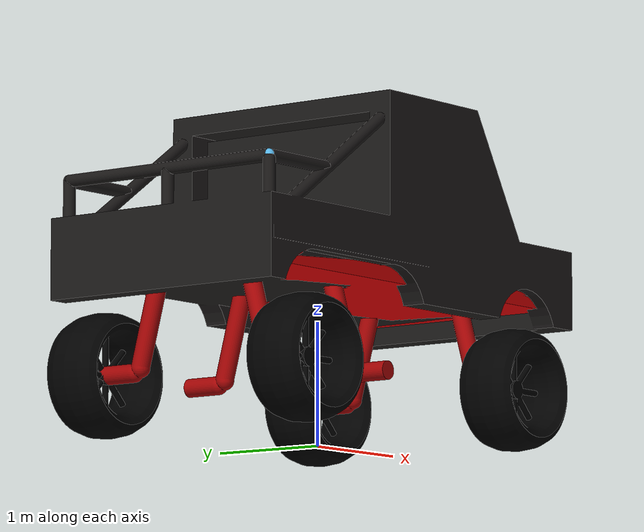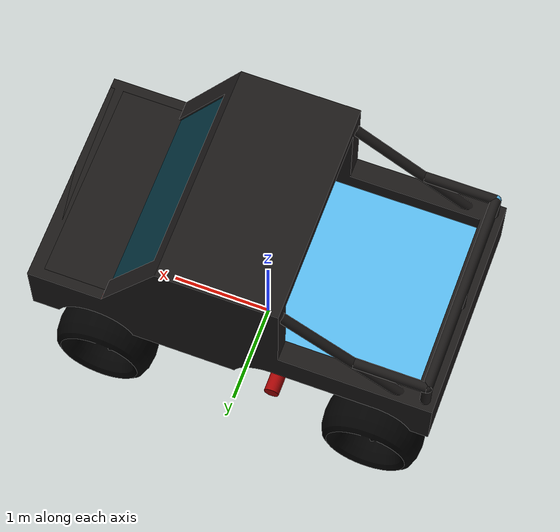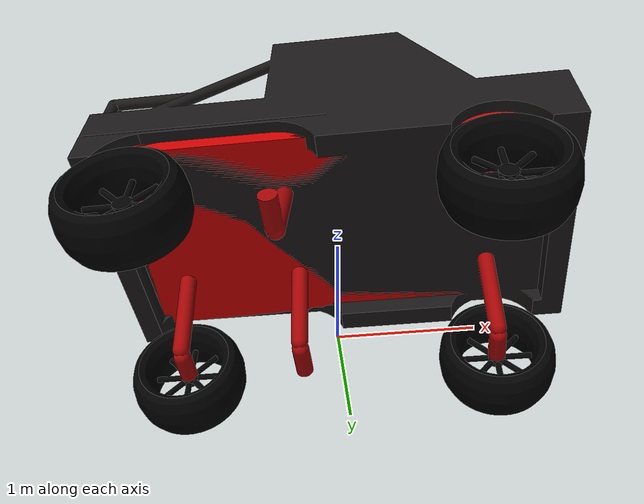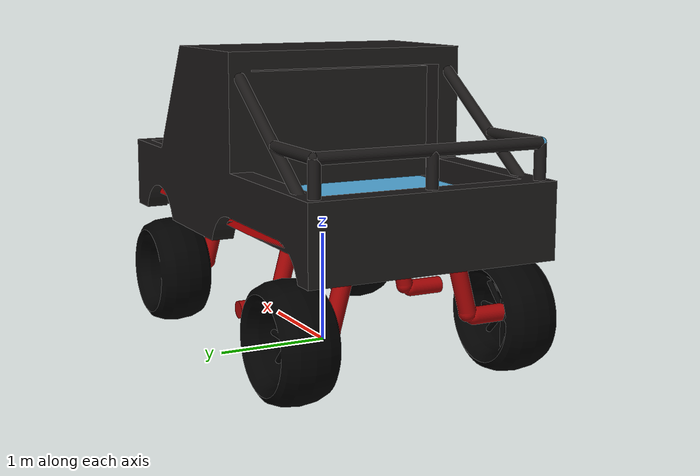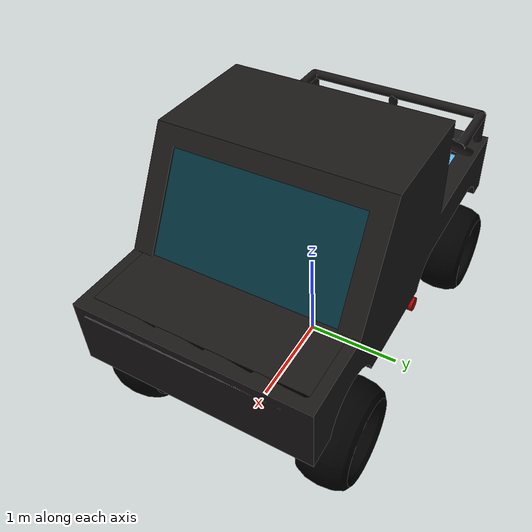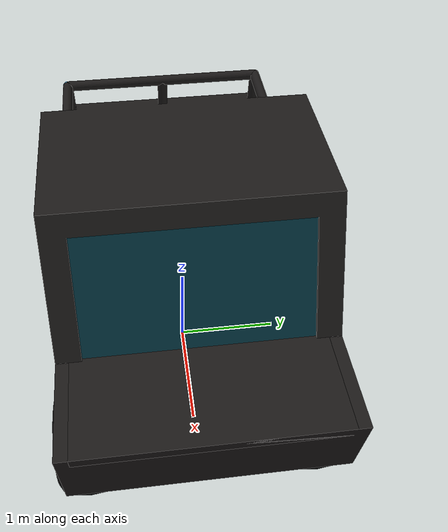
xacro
<?xml version="1.0"?>
<!-- created with Phobos 1.0.1 "Capricious Choutengan" -->
<robot name="GWAGON" xmlns:xacro="http://ros.org/wiki/xacro">

  <xacro:include filename="$(find gwagon_description)/urdf/imu.urdf.xacro"/>
  <xacro:include filename="$(find gwagon_description)/urdf/camera.urdf.xacro"/>

  <xacro:property name="PI" value="3.1415926535897931"/>

  <xacro:arg name="robot_id" default="robot"/>
  <xacro:arg name="prefix" default=""/>
  <xacro:arg name="robot_ns" default=""/>

  <link name="Bajos">
    <inertial>
      <origin xyz="0 0 0" rpy="0 0 0"/>
      <mass value="5"/>
      <inertia ixx="0.001" ixy="0" ixz="0" iyy="0.001" iyz="0" izz="0.001"/>
    </inertial>
    <visual name="Bajos.001">
      <origin xyz="0 0 0" rpy="0 0 0"/>
      <geometry>
        <box size="3.8 2.0 0.2"/>
      </geometry>
      <material name="Material.001"/>
    </visual>
  </link>

  <link name="Capo">
    <inertial>
      <origin xyz="0 0 0" rpy="0 0 0"/>
      <mass value="5"/>
      <inertia ixx="0.001" ixy="0" ixz="0" iyy="0.001" iyz="0" izz="0.001"/>
    </inertial>
    <visual name="Capo.001">
      <origin xyz="0 0 0" rpy="0 0 0"/>
      <geometry>
        <box size="1.0 2.0 0.1"/>
      </geometry>
      <material name="Material"/>
    </visual>
  </link>

  <link name="base_link">
    <inertial>
      <origin xyz="0 0 0" rpy="0 0 0"/>
      <mass value="1"/>
      <inertia ixx="0.001" ixy="0" ixz="0" iyy="0.001" iyz="0" izz="0.001"/>
    </inertial>
    <visual name="base_link.001">
      <origin xyz="0 0 0" rpy="0 0 0"/>
      <geometry>
        <mesh filename="file://$(find gwagon_description)/meshes/dae/Cube.001.dae" scale="2.0 1.1 1.0"/>
      </geometry>
      <material name="Material"/>
    </visual>
  </link>

  <link name="base_footprint">
    <inertial>
      <origin xyz="0 0 0" rpy="0 0 0"/>
      <mass value="1"/>
      <inertia ixx="0.001" ixy="0" ixz="0" iyy="0.001" iyz="0" izz="0.001"/>
    </inertial>
  </link>

  <link name="Cristal">
    <inertial>
      <origin xyz="0 0 0" rpy="0 0 0"/>
      <mass value="5"/>
      <inertia ixx="0.001" ixy="0" ixz="0" iyy="0.001" iyz="0" izz="0.001"/>
    </inertial>
    <visual name="Cristal.001">
      <origin xyz="0 0 0" rpy="0 0 0"/>
      <geometry>
        <box size="1.0 2.0 0"/>
      </geometry>
      <material name="Material.008"/>
    </visual>
  </link>

  <link name="Rueda_dealntera_der_">
    <inertial>
      <origin xyz="0 0 0" rpy="0 0 0"/>
      <mass value="50"/>
      <inertia ixx="0.001" ixy="0" ixz="0" iyy="0.001" iyz="0" izz="0.001"/>
    </inertial>
    <visual name="Rueda_dealntera_der.001">
      <origin xyz="0 0 0" rpy="0 0 0"/>
      <geometry>
        <mesh filename="file://$(find gwagon_description)/meshes/dae/Torus.003.dae" scale="0.4 0.4 1.0"/>
      </geometry>
      <material name="Material.002"/>
    </visual>
    <collision name="Rueda_dealntera_der">
      <origin xyz="0 0 0" rpy="0 0 0"/>
      <geometry>
        <mesh filename="file://$(find gwagon_description)/meshes/dae/Torus.009.dae" scale="1.0 1.0 1.0"/>
      </geometry>
    </collision>
  </link>

  <link name="Rueda_dealntera_iz_">
    <inertial>
      <origin xyz="0 0 0" rpy="0 0 0"/>
      <mass value="50"/>
      <inertia ixx="0.001" ixy="0" ixz="0" iyy="0.001" iyz="0" izz="0.001"/>
    </inertial>
    <visual name="Rueda_dealntera_iz.001">
      <origin xyz="0 0 0" rpy="0 0 0"/>
      <geometry>
        <mesh filename="file://$(find gwagon_description)/meshes/dae/Torus.001.dae" scale="0.4 0.4 1.0"/>
      </geometry>
      <material name="Material.005"/>
    </visual>
    <collision name="Rueda_dealntera_iz">
      <origin xyz="0 0 0" rpy="0 0 0"/>
      <geometry>
        <mesh filename="file://$(find gwagon_description)/meshes/dae/Torus.011.dae" scale="1.0 1.0 1.0"/>
      </geometry>
    </collision>
  </link>

  <link name="Rueda_trasera1_der_">
    <inertial>
      <origin xyz="0 0 0" rpy="0 0 0"/>
      <mass value="50"/>
      <inertia ixx="0.001" ixy="0" ixz="0" iyy="0.001" iyz="0" izz="0.001"/>
    </inertial>
    <visual name="Rueda_trasera1_der.001">
      <origin xyz="0 0 0" rpy="0 0 0"/>
      <geometry>
        <mesh filename="file://$(find gwagon_description)/meshes/dae/Torus.002.dae" scale="0.4 0.4 1.0"/>
      </geometry>
      <material name="Material.003"/>
    </visual>
    <collision name="Rueda_trasera1_der">
      <origin xyz="0 0 0" rpy="0 0 0"/>
      <geometry>
        <mesh filename="file://$(find gwagon_description)/meshes/dae/Torus.010.dae" scale="1.0 1.0 1.0"/>
      </geometry>
    </collision>
  </link>

  <link name="Rueda_trasera1_iz_">
    <inertial>
      <origin xyz="0 0 0" rpy="0 0 0"/>
      <mass value="50"/>
      <inertia ixx="0.001" ixy="0" ixz="0" iyy="0.001" iyz="0" izz="0.001"/>
    </inertial>
    <visual name="Rueda_trasera1_iz.001">
      <origin xyz="0 0 0" rpy="0 0 0"/>
      <geometry>
        <mesh filename="file://$(find gwagon_description)/meshes/dae/Torus.005.dae" scale="0.4 0.4 1.0"/>
      </geometry>
      <material name="Material.002"/>
    </visual>
    <collision name="Rueda_trasera1_iz">
      <origin xyz="0 0 0" rpy="0 0 0"/>
      <geometry>
        <mesh filename="file://$(find gwagon_description)/meshes/dae/Torus.007.dae" scale="1.0 1.0 1.0"/>
      </geometry>
    </collision>
  </link>

  <link name="Invisible">
    <inertial>
      <origin xyz="0 0 0" rpy="0 0 0"/>
      <mass value="0.001"/>
      <inertia ixx="0.001" ixy="0" ixz="0" iyy="0.001" iyz="0" izz="0.001"/>
    </inertial>
    <visual name="Plane">
      <origin xyz="0 0 0" rpy="0 0 0"/>
      <geometry>
        <box size="2.0 2.0 0"/>
      </geometry>
    </visual>
    <collision name="Plane">
      <origin xyz="0 0 0" rpy="0 0 0"/>
      <geometry>
        <box size="2.0 2.0 0"/>
      </geometry>
    </collision>
  </link>

  <link name="Suspension_del_der">
    <inertial>
      <origin xyz="0 0 0" rpy="0 0 0"/>
      <mass value="10"/>
      <inertia ixx="0.001" ixy="0" ixz="0" iyy="0.001" iyz="0" izz="0.001"/>
    </inertial>
    <visual name="Suspension_del_der.001">
      <origin xyz="0 0 0" rpy="0 0 0"/>
      <geometry>
        <mesh filename="file://$(find gwagon_description)/meshes/dae/Cylinder.008.dae" scale="0.075 0.075 0.35"/>
      </geometry>
      <material name="Material.007"/>
    </visual>
  </link>

  <link name="Suspension_del_iz">
    <inertial>
      <origin xyz="0 0 0" rpy="0 0 0"/>
      <mass value="10"/>
      <inertia ixx="0.001" ixy="0" ixz="0" iyy="0.001" iyz="0" izz="0.001"/>
    </inertial>
    <visual name="Suspension_del_iz.001">
      <origin xyz="0 0 0" rpy="0 0 0"/>
      <geometry>
        <mesh filename="file://$(find gwagon_description)/meshes/dae/Cylinder.011.dae" scale="0.075 0.075 0.35"/>
      </geometry>
      <material name="Material.007"/>
    </visual>
  </link>

  <link name="Suspension_tra1_der">
    <inertial>
      <origin xyz="0 0 0" rpy="0 0 0"/>
      <mass value="10"/>
      <inertia ixx="0.001" ixy="0" ixz="0" iyy="0.001" iyz="0" izz="0.001"/>
    </inertial>
    <visual name="Suspension_tra1_der.001">
      <origin xyz="0 0 0" rpy="0 0 0"/>
      <geometry>
        <mesh filename="file://$(find gwagon_description)/meshes/dae/Cylinder.009.dae" scale="0.075 0.075 0.35"/>
      </geometry>
      <material name="Material.007"/>
    </visual>
  </link>

  <link name="Suspension_tras1_iz">
    <inertial>
      <origin xyz="0 0 0" rpy="0 0 0"/>
      <mass value="10"/>
      <inertia ixx="0.001" ixy="0" ixz="0" iyy="0.001" iyz="0" izz="0.001"/>
    </inertial>
    <visual name="Suspension_tras1_iz.001">
      <origin xyz="0 0 0" rpy="0 0 0"/>
      <geometry>
        <mesh filename="file://$(find gwagon_description)/meshes/dae/Cylinder.012.dae" scale="0.075 0.075 0.35"/>
      </geometry>
      <material name="Material.007"/>
    </visual>
  </link>

  <link name="Suspension_tras2_der">
    <inertial>
      <origin xyz="0 0 0" rpy="0 0 0"/>
      <mass value="10"/>
      <inertia ixx="0.001" ixy="0" ixz="0" iyy="0.001" iyz="0" izz="0.001"/>
    </inertial>
    <visual name="Suspension_tras2_der.001">
      <origin xyz="0 0 0" rpy="0 0 0"/>
      <geometry>
        <mesh filename="file://$(find gwagon_description)/meshes/dae/Cylinder.010.dae" scale="0.075 0.075 0.35"/>
      </geometry>
      <material name="Material.007"/>
    </visual>
  </link>

  <link name="Suspension_tras2_iz">
    <inertial>
      <origin xyz="0 0 0" rpy="0 0 0"/>
      <mass value="10"/>
      <inertia ixx="0.001" ixy="0" ixz="0" iyy="0.001" iyz="0" izz="0.001"/>
    </inertial>
    <visual name="Suspension_tras2_iz.001">
      <origin xyz="0 0 0" rpy="0 0 0"/>
      <geometry>
        <mesh filename="file://$(find gwagon_description)/meshes/dae/Cylinder.013.dae" scale="0.075 0.075 0.35"/>
      </geometry>
      <material name="Material.007"/>
    </visual>
  </link>

  <link name="Union_b">
    <inertial>
      <origin xyz="0 0 0" rpy="0 0 0"/>
      <mass value="5"/>
      <inertia ixx="0.001" ixy="0" ixz="0" iyy="0.001" iyz="0" izz="0.001"/>
    </inertial>
    <visual name="Union_b.001">
      <origin xyz="0 0 0" rpy="0 0 0"/>
      <geometry>
        <sphere radius="0.05"/>
      </geometry>
      <material name="Material"/>
    </visual>
  </link>

  <link name="Union_b2">
    <inertial>
      <origin xyz="0 0 0" rpy="0 0 0"/>
      <mass value="5"/>
      <inertia ixx="0.001" ixy="0" ixz="0" iyy="0.001" iyz="0" izz="0.001"/>
    </inertial>
    <visual name="Union_b2.001">
      <origin xyz="0 0 0" rpy="0 0 0"/>
      <geometry>
        <sphere radius="0.05"/>
      </geometry>
    </visual>
  </link>

  <link name="Z1">
    <inertial>
      <origin xyz="0 0 0" rpy="0 0 0"/>
      <mass value="5"/>
      <inertia ixx="0.001" ixy="0" ixz="0" iyy="0.001" iyz="0" izz="0.001"/>
    </inertial>
    <visual name="B1.001">
      <origin xyz="0 0 0" rpy="0 0 0"/>
      <geometry>
        <cylinder radius="0.05" length="2.0"/>
      </geometry>
      <material name="Material"/>
    </visual>
    <collision name="Z1">
      <origin xyz="0 0 0" rpy="0 0 0"/>
      <geometry>
        <cylinder radius="0.05" length="2.0"/>
      </geometry>
    </collision>
  </link>

  <link name="Z2">
    <inertial>
      <origin xyz="0 0 0" rpy="0 0 0"/>
      <mass value="5"/>
      <inertia ixx="0.001" ixy="0" ixz="0" iyy="0.001" iyz="0" izz="0.001"/>
    </inertial>
    <visual name="B2.001">
      <origin xyz="0 0 0" rpy="0 0 0"/>
      <geometry>
        <cylinder radius="0.05" length="0.3"/>
      </geometry>
      <material name="Material"/>
    </visual>
    <collision name="Z2">
      <origin xyz="0 0 0" rpy="0 0 0"/>
      <geometry>
        <cylinder radius="0.05" length="0.3"/>
      </geometry>
    </collision>
  </link>

  <link name="Z3">
    <inertial>
      <origin xyz="0 0 0" rpy="0 0 0"/>
      <mass value="5"/>
      <inertia ixx="0.001" ixy="0" ixz="0" iyy="0.001" iyz="0" izz="0.001"/>
    </inertial>
    <visual name="B3.001">
      <origin xyz="0 0 0" rpy="0 0 0"/>
      <geometry>
        <cylinder radius="0.05" length="0.3"/>
      </geometry>
      <material name="Material"/>
    </visual>
    <collision name="Z3">
      <origin xyz="0 0 0" rpy="0 0 0"/>
      <geometry>
        <cylinder radius="0.05" length="0.3"/>
      </geometry>
    </collision>
  </link>

  <link name="Z4">
    <inertial>
      <origin xyz="0 0 0" rpy="0 0 0"/>
      <mass value="5"/>
      <inertia ixx="0.001" ixy="0" ixz="0" iyy="0.001" iyz="0" izz="0.001"/>
    </inertial>
    <visual name="B4.001">
      <origin xyz="0 0 0" rpy="0 0 0"/>
      <geometry>
        <cylinder radius="0.05" length="0.3"/>
      </geometry>
      <material name="Material"/>
    </visual>
    <collision name="Z4">
      <origin xyz="0 0 0" rpy="0 0 0"/>
      <geometry>
        <cylinder radius="0.05" length="0.3"/>
      </geometry>
    </collision>
  </link>

  <link name="Z5">
    <inertial>
      <origin xyz="0 0 0" rpy="0 0 0"/>
      <mass value="5"/>
      <inertia ixx="0.001" ixy="0" ixz="0" iyy="0.001" iyz="0" izz="0.001"/>
    </inertial>
    <visual name="B5.001">
      <origin xyz="0 0 0" rpy="0 0 0"/>
      <geometry>
        <cylinder radius="0.05" length="0.7"/>
      </geometry>
      <material name="Material"/>
    </visual>
    <collision name="Z2">
      <origin xyz="0 0 0" rpy="0 0 0"/>
      <geometry>
        <cylinder radius="0.05" length="0.7"/>
      </geometry>
    </collision>
  </link>

  <link name="Z6">
    <inertial>
      <origin xyz="0 0 0" rpy="0 0 0"/>
      <mass value="5"/>
      <inertia ixx="0.001" ixy="0" ixz="0" iyy="0.001" iyz="0" izz="0.001"/>
    </inertial>
    <visual name="B6.001">
      <origin xyz="0 0 0" rpy="0 0 0"/>
      <geometry>
        <cylinder radius="0.05" length="0.7"/>
      </geometry>
      <material name="Material"/>
    </visual>
    <collision name="Z2">
      <origin xyz="0 0 0" rpy="0 0 0"/>
      <geometry>
        <cylinder radius="0.05" length="0.7"/>
      </geometry>
    </collision>
  </link>

  <joint name="base_foodprint_" type="fixed">
    <origin xyz="0 0 1.7" rpy="0 0 0"/>
    <parent link="base_footprint"/>
    <child link="base_link"/>
  </joint>

  <joint name="Bajos" type="fixed">
    <origin xyz="0 0 -0.4" rpy="0 0 0"/>
    <parent link="base_link"/>
    <child link="Bajos"/>
  </joint>

  <joint name="Capo" type="fixed">
    <origin xyz="1.5 0 -0.05" rpy="0 0 0"/>
    <parent link="base_link"/>
    <child link="Capo"/>
  </joint>

  <joint name="Cristal" type="fixed">
    <origin xyz="0.99263 0.01257 0.40732" rpy="0 1.0472 0"/>
    <parent link="base_link"/>
    <child link="Cristal"/>
  </joint>

  <joint name="Rueda_dealntera_der" type="continuous">
    <origin xyz="1.3 1.0 -1.2" rpy="1.5708 0 3.1415926"/>
    <parent link="base_link"/>
    <child link="Rueda_dealntera_der_"/>
    <axis xyz="0 0 1.0"/>
    <limit effort="0" velocity="0"/>
  </joint>

  <transmission name="Rueda_dealntera_der_trans">
      <type>transmission_interface/SimpleTransmission</type>
      <joint name="Rueda_dealntera_der" >
          <hardwareInterface>hardware_interface/VelocityJointInterface</hardwareInterface>
      </joint>
      <actuator name="Rueda_dealntera_der_motor">
          <mechanicalReduction>1</mechanicalReduction>
      </actuator>
  </transmission>

  <gazebo reference="Rueda_dealntera_der_">
      <mu1>5</mu1>
      <mu2>5</mu2>
  </gazebo>

  <joint name="Rueda_dealntera_iz" type="continuous">
    <origin xyz="1.3 -1.0 -1.2" rpy="1.5708 0 0"/>
    <parent link="base_link"/>
    <child link="Rueda_dealntera_iz_"/>
    <axis xyz="0 0 1.0"/>
    <limit effort="0" velocity="0"/>
  </joint>

  <transmission name="Rueda_dealntera_iz_trans">
      <type>transmission_interface/SimpleTransmission</type>
      <joint name="Rueda_dealntera_iz" >
          <hardwareInterface>hardware_interface/VelocityJointInterface</hardwareInterface>
      </joint>
      <actuator name="Rueda_dealntera_iz_motor">
          <mechanicalReduction>1</mechanicalReduction>
      </actuator>
  </transmission>

  <gazebo reference="Rueda_dealntera_iz_">
      <mu1>5</mu1>
      <mu2>5</mu2>
  </gazebo>

  <joint name="Rueda_trasera1_der" type="continuous">
    <origin xyz="-1.45 1.0 -1.2" rpy="1.5708 0 3.1415926"/>
    <parent link="base_link"/>
    <child link="Rueda_trasera1_der_"/>
    <axis xyz="0 0 1.0"/>
    <limit effort="0" velocity="0"/>
  </joint>

  <transmission name="Rueda_trasera1_der_trans">
      <type>transmission_interface/SimpleTransmission</type>
      <joint name="Rueda_trasera1_der" >
          <hardwareInterface>hardware_interface/VelocityJointInterface</hardwareInterface>
      </joint>
      <actuator name="Rueda_trasera1_der_motor">
          <mechanicalReduction>1</mechanicalReduction>
      </actuator>
  </transmission>

  <gazebo reference="Rueda_trasera1_der_">
      <mu1>5</mu1>
      <mu2>5</mu2>
  </gazebo>

  <joint name="Rueda_trasera1_iz" type="continuous">
    <origin xyz="-1.45 -1.0 -1.2" rpy="1.5708 0 0"/>
    <parent link="base_link"/>
    <child link="Rueda_trasera1_iz_"/>
    <axis xyz="0 0 1.0"/>
    <limit effort="0" velocity="0"/>
  </joint>

  <transmission name="Rueda_trasera1_iz_trans">
      <type>transmission_interface/SimpleTransmission</type>
      <joint name="Rueda_trasera1_iz" >
          <hardwareInterface>hardware_interface/VelocityJointInterface</hardwareInterface>
      </joint>
      <actuator name="Rueda_trasera1_iz_motor">
          <mechanicalReduction>1</mechanicalReduction>
      </actuator>
  </transmission>

  <gazebo reference="Rueda_trasera1_iz_">
      <mu1>5</mu1>
      <mu2>5</mu2>
  </gazebo>

  <joint name="Suspension_del_der" type="fixed">
    <origin xyz="1.3 0.54922 -0.8278" rpy="0.2618 0 0"/>
    <parent link="base_link"/>
    <child link="Suspension_del_der"/>
  </joint>

  <joint name="Suspension_del_iz" type="fixed">
    <origin xyz="1.3 -0.54922 -0.8278" rpy="0.2618 0 -3.14159"/>
    <parent link="base_link"/>
    <child link="Suspension_del_iz"/>
  </joint>

  <joint name="Suspension_tra1_der" type="fixed">
    <origin xyz="-0.4 0.54922 -0.8278" rpy="0.2618 0 0"/>
    <parent link="base_link"/>
    <child link="Suspension_tra1_der"/>
  </joint>

  <joint name="Suspension_tras1_iz" type="fixed">
    <origin xyz="-1.45 -0.54922 -0.8278" rpy="0.2618 0 -3.14159"/>
    <parent link="base_link"/>
    <child link="Suspension_tras1_iz"/>
  </joint>

  <joint name="Suspension_tras2_der" type="fixed">
    <origin xyz="-1.45 0.54922 -0.8278" rpy="0.2618 0 0"/>
    <parent link="base_link"/>
    <child link="Suspension_tras2_der"/>
  </joint>

  <joint name="Suspension_tras2_iz" type="fixed">
    <origin xyz="-0.4 -0.54922 -0.8278" rpy="0.2618 0 -3.14159"/>
    <parent link="base_link"/>
    <child link="Suspension_tras2_iz"/>
  </joint>

  <joint name="Union_b" type="fixed">
    <origin xyz="-1.9 1.0 0.3" rpy="0 0 0"/>
    <parent link="base_link"/>
    <child link="Union_b"/>
  </joint>

  <joint name="Union_b2" type="fixed">
    <origin xyz="-1.9 -1.0 0.3" rpy="0 0 0"/>
    <parent link="base_link"/>
    <child link="Union_b2"/>
  </joint>

  <joint name="Z1" type="fixed">
    <origin xyz="-1.9 0 0.3" rpy="1.5708 0 0"/>
    <parent link="base_link"/>
    <child link="Z1"/>
  </joint>

  <joint name="Z2" type="fixed">
    <origin xyz="-1.9 1.0 0.15" rpy="0 0 0"/>
    <parent link="base_link"/>
    <child link="Z2"/>
  </joint>

  <joint name="Z3" type="fixed">
    <origin xyz="-1.9 -1.0 0.15" rpy="0 0 0"/>
    <parent link="base_link"/>
    <child link="Z3"/>
  </joint>

  <joint name="Z4" type="fixed">
    <origin xyz="-1.9 0 0.15" rpy="0 0 0"/>
    <parent link="base_link"/>
    <child link="Z4"/>
  </joint>

  <joint name="Z5" type="fixed">
    <origin xyz="-1.55 -1.0 0.3" rpy="0 1.5708 0"/>
    <parent link="base_link"/>
    <child link="Z5"/>
  </joint>

  <joint name="Z6" type="fixed">
    <origin xyz="-1.55 1.0 0.3" rpy="0 1.5708 0"/>
    <parent link="base_link"/>
    <child link="Z6"/>
  </joint>

  <joint name="Invisible" type="fixed">
    <origin xyz="-0.8 0 -0.2" rpy="0 0 0"/>
    <parent link="base_link"/>
    <child link="Invisible"/>
  </joint>

  <material name="Material">
    <color rgba="0.1 0.09069 0.08795 1.0"/>
  </material>

  <material name="Material.001">
    <color rgba="0.8 0 0.0022 1.0"/>
  </material>

  <material name="Material.002">
    <color rgba="0 0 0 1.0"/>
  </material>

  <material name="Material.003">
    <color rgba="0 0 0 1.0"/>
  </material>

  <material name="Material.004">
    <color rgba="0 0 0 1.0"/>
  </material>

  <material name="Material.005">
    <color rgba="0 0 0 1.0"/>
  </material>

  <material name="Material.006">
    <color rgba="0 0 0 1.0"/>
  </material>

  <material name="Material.007">
    <color rgba="0.64 0.01477 0.0169 1.0"/>
  </material>

  <material name="Material.008">
    <color rgba="0.00996 0.19431 0.24 1.0"/>
  </material>

  <!-- *****SENSORES***** -->

  <!-- IMU -->

  <xacro:sensor_imu ns="$(arg robot_ns)" prefix="$(arg prefix)imu" parent="$(arg prefix)base_link">
    <origin xyz="0.0 0.0 0.0" rpy="0 0 0"/>
  </xacro:sensor_imu>

  <!-- CAMARA -->

  <xacro:sensor_camera node_name="base_link_" node_namespace="GWAGON"
  frame_prefix="base_link_" parent="base_link">
    <origin xyz="0.0 0.0 -0.01" rpy="0 3.141592 0"/>
  </xacro:sensor_camera>

  <!-- Gazebo ros control plugins -->
  <xacro:arg name="config_controllers" default="$(find gwagon_description)/config/config.yaml"/>
  <xacro:arg name="update_rate" default="100"/>
  <xacro:include filename="$(find gwagon_description)/urdf/gazebo.urdf.xacro"/>
  <xacro:ros2_control/>

</robot>

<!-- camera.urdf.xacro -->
<robot xmlns:xacro="http://wiki.ros.org/xacro" name="camera">
  <!--  ######## UTILS ########  -->
  <xacro:macro name="solid_cuboid_inertia" params="m w h d">
    <inertia ixx="${(m*(h*h+d*d))/12}" ixy="0" ixz="0" iyy="${(m*(w*w+d*d))/12}" iyz="0"
      izz="${(m*(w*w+h*h))/12}" />
  </xacro:macro>
  <!--  ######### IMU #########  -->
  <xacro:macro name="sensor_imu" params="prefix ns:='' topic:='imu/data' parent *origin">

    <joint name="${prefix}_joint" type="fixed">
      <axis xyz="1 0 0" />
      <!-- origin xyz="0 0 0.2825"/ -->
      <xacro:insert_block name="origin" />
      <parent link="${parent}" />
      <child link="${prefix}_link" />
    </joint>

    <link name="${prefix}_link">
      <inertial>
        <origin xyz="0.0 0 0.01" rpy="0 0 0" />
        <mass value="0.005" />
        <xacro:solid_cuboid_inertia m="0.005" w="0.001" h="0.001" d="0.001" />
      </inertial>
      <visual>
        <origin rpy="0 0 0" xyz="0 0 0" />
        <geometry>
          <box size="0.001 0.001 0.001" />
        </geometry>
      </visual>
    </link>

    <gazebo reference="${prefix}_link">
      <gravity>true</gravity>
      <sensor name="${prefix}_imu_sensor" type="imu">
        <always_on>true</always_on>
        <update_rate>100</update_rate>
        <visualize>true</visualize>
        <topic>__default_topic__</topic>
        <plugin filename="libgazebo_ros_imu_sensor.so" name="${prefix}_imu_plugin">
          <topicName>${topic}</topicName>
          <bodyName>${prefix}_link</bodyName>
          <updateRateHZ>100.0</updateRateHZ>
          <gaussianNoise>0.0</gaussianNoise>
          <xyzOffset>0 0 0</xyzOffset>
          <rpyOffset>0 0 0</rpyOffset>
          <frameName>${prefix}_link</frameName>
        </plugin>
        <pose>0 0 0 0 0 0</pose>
      </sensor>
    </gazebo>

  </xacro:macro>
  <!--  ####### CAMERA #######  -->
  <xacro:macro name="sensor_camera_generic"
    params="frame_prefix parent *origin node_name:=camera node_namespace:=${None} topic_prefix:=~/ horizontal_fov:=80 vertical_fov:=60 video_width:=1280 video_height:=720 video_fps:=30">
    <!--  node_namespace is used from node_name if not set  -->
    <xacro:if value="${node_namespace == None}">
      <xacro:property name="node_namespace" value="${node_name}" />
    </xacro:if>

    <joint name="${frame_prefix}camera_base_joint" type="fixed">
      <xacro:insert_block name="origin" />
      <parent link="${parent}" />
      <child link="${frame_prefix}camera_base_link" />
    </joint>

    <link name="${frame_prefix}camera_base_link">
      <visual>
        <origin xyz="0 0 0" rpy="0 0 0" />
        <geometry>
          <box size="0.025 0.05 0.025" />
        </geometry>
        <material name="light_grey">
          <color rgba="0.35 0.35 0.35 1" />
        </material>
      </visual>
      <collision>
        <origin xyz="0.0 0.0 0.0" rpy="0 0 0" />
        <geometry>
          <box size="0.025 0.05 0.025" />
        </geometry>
      </collision>
      <inertial>
        <mass value="0.135" />
        <origin xyz="0 0 0" />
        <xacro:solid_cuboid_inertia m="0.135" w="0.033" h="0.175" d="0.03" />
      </inertial>
    </link>

    <!--  Camera -->
    <joint name="${frame_prefix}camera_joint" type="fixed">
      <origin xyz="0.0 -0.06 0.0" rpy="0.0 0.0 0.0" />
      <parent link="${frame_prefix}camera_base_link" />
      <child link="${frame_prefix}camera_frame" />
    </joint>

    <link name="${frame_prefix}camera_frame" />

    <joint name="${frame_prefix}color_optical_joint" type="fixed">
      <origin xyz="0.0 0 0.0" rpy="${-pi/2} 0.0 ${-pi/2}" />
      <parent link="${frame_prefix}camera_frame" />
      <child link="${frame_prefix}camera_optical_frame" />
    </joint>

    <link name="${frame_prefix}camera_optical_frame" />

    <gazebo reference="${frame_prefix}camera_frame">
      <sensor name="${frame_prefix}sensor" type="camera">
        <pose>0.0 0.0 0.0 0.0 0.0 0.0</pose>
        <visualize>false</visualize>
        <update_rate>30</update_rate>
        <camera>
          <horizontal_fov>${radians(float(horizontal_fov))}</horizontal_fov>
          <vertical_fov>${radians(float(vertical_fov))}</vertical_fov>
          <image>
            <width>${video_width}</width>
            <height>${video_height}</height>
            <format>R8G8B8</format>
          </image>
          <clip>
            <near>0.10</near>
            <far>100.0</far>
          </clip>
          <noise>
            <type>gaussian</type>
            <mean>0.0</mean>
            <stddev>0.007</stddev>
          </noise>
        </camera>
        <plugin name="${node_name}_camera" filename="libgazebo_ros_camera.so">
          <ros>
            <namespace>${node_namespace}/${node_name}</namespace>
            <remapping>right/image_raw:=right/image_raw_color</remapping>
            <remapping>right/camera_info:=right/camera_info</remapping>
          </ros>
          <camera_name>camera1</camera_name>
          <frame_name>${node_namespace}/${frame_prefix}camera_optical_frame</frame_name>
        </plugin>
      </sensor>
    </gazebo>

  </xacro:macro>

  <xacro:macro name="sensor_camera"
    params="frame_prefix parent *origin node_namespace:=cameras node_name topic_prefix:=~/">
    <xacro:sensor_camera_generic frame_prefix="${frame_prefix}" parent="${parent}"
      node_namespace="${node_namespace}" node_name="${node_name}" topic_prefix="${topic_prefix}"
      horizontal_fov="110" vertical_fov="70" video_width="1920" video_height="1080" video_fps="30">
      <xacro:insert_block name="origin" />
    </xacro:sensor_camera_generic>
  </xacro:macro>

</robot>
